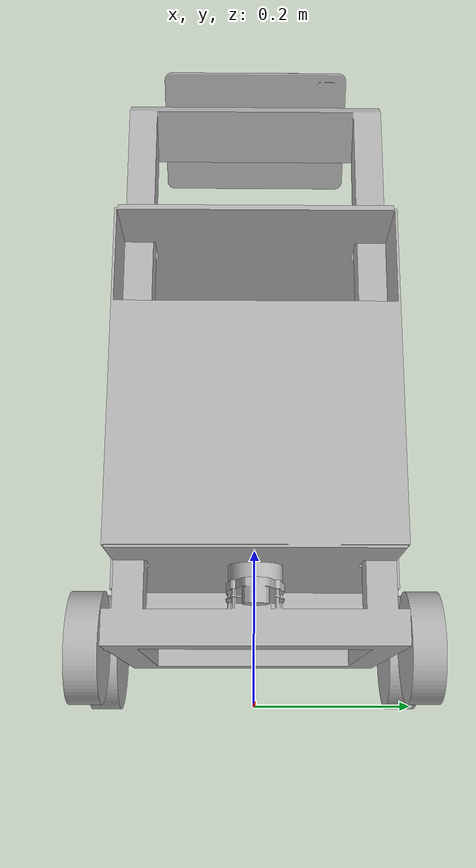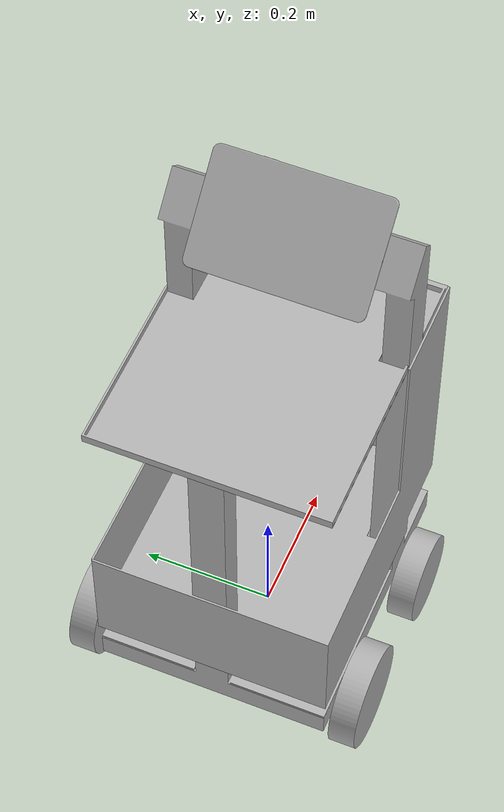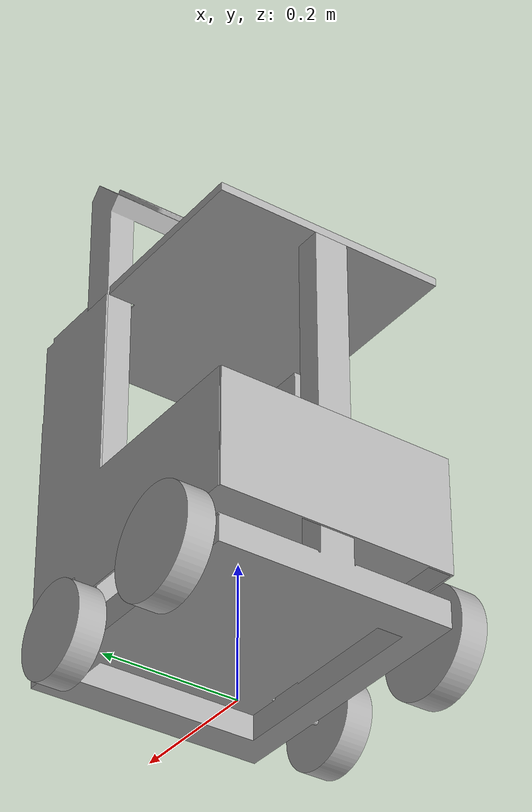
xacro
<?xml version="1.0" ?>
<robot name="guido" xmlns:xacro="http://www.ros.org/wiki/xacro">

<xacro:include filename="$(find guido_description)/urdf/materials.xacro" />
<xacro:include filename="$(find guido_description)/urdf/guido.trans" />
<xacro:include filename="$(find guido_description)/urdf/guido.gazebo" />

<link name="base_link">
  <inertial>
    <origin rpy="0 0 0" xyz="0.025787843252191255 0.00013395942900000117 0.25839072882336817"/>
    <mass value="2.1323844460998633"/>
    <inertia ixx="0.155357" ixy="1.4e-05" ixz="-0.007774" iyy="0.162862" iyz="5.4e-05" izz="0.064193"/>
  </inertial>
  <visual>
    <origin rpy="0 0 0" xyz="0 0 0"/>
    <geometry>
      <mesh filename="package://guido_description/meshes/base_link.stl" scale="0.001 0.001 0.001"/>
    </geometry>
    <material name="silver"/>
  </visual>
  <collision>
    <origin rpy="0 0 0" xyz="0 0 0"/>
    <geometry>
      <mesh filename="package://guido_description/meshes/base_link.stl" scale="0.001 0.001 0.001"/>
    </geometry>
  </collision>
</link>

<link name="fr_wheel_1">
  <inertial>
    <origin rpy="0 0 0" xyz="-1.249000902703301e-16 -0.01999999999999999 0.0"/>
    <mass value="0.2670294065290906"/>
    <inertia ixx="0.000451" ixy="0.0" ixz="-0.0" iyy="0.000775" iyz="0.0" izz="0.000451"/>
  </inertial>
  <visual>
    <origin rpy="0 0 0" xyz="-0.0855 0.185 -0.068"/>
    <geometry>
      <mesh filename="package://guido_description/meshes/fr_wheel_1.stl" scale="0.001 0.001 0.001"/>
    </geometry>
    <material name="silver"/>
  </visual>
  <collision>
    <origin rpy="0 0 0" xyz="-0.0855 0.185 -0.068"/>
    <geometry>
      <mesh filename="package://guido_description/meshes/fr_wheel_1.stl" scale="0.001 0.001 0.001"/>
    </geometry>
  </collision>
</link>

<link name="fl_wheel_1">
  <inertial>
    <origin rpy="0 0 0" xyz="-8.326672684688674e-17 0.01999999999999999 1.3877787807814457e-17"/>
    <mass value="0.2670294065290905"/>
    <inertia ixx="0.000451" ixy="0.0" ixz="-0.0" iyy="0.000775" iyz="0.0" izz="0.000451"/>
  </inertial>
  <visual>
    <origin rpy="0 0 0" xyz="-0.0855 -0.185 -0.068"/>
    <geometry>
      <mesh filename="package://guido_description/meshes/fl_wheel_1.stl" scale="0.001 0.001 0.001"/>
    </geometry>
    <material name="silver"/>
  </visual>
  <collision>
    <origin rpy="0 0 0" xyz="-0.0855 -0.185 -0.068"/>
    <geometry>
      <mesh filename="package://guido_description/meshes/fl_wheel_1.stl" scale="0.001 0.001 0.001"/>
    </geometry>
  </collision>
</link>

<link name="br_wheel_1">
  <inertial>
    <origin rpy="0 0 0" xyz="-5.551115123125783e-17 -0.019999999999999962 4.163336342344337e-17"/>
    <mass value="0.34631564093598505"/>
    <inertia ixx="0.000754" ixy="-0.0" ixz="0.0" iyy="0.001337" iyz="0.0" izz="0.000754"/>
  </inertial>
  <visual>
    <origin rpy="0 0 0" xyz="0.1417 0.185 -0.07905"/>
    <geometry>
      <mesh filename="package://guido_description/meshes/br_wheel_1.stl" scale="0.001 0.001 0.001"/>
    </geometry>
    <material name="silver"/>
  </visual>
  <collision>
    <origin rpy="0 0 0" xyz="0.1417 0.185 -0.07905"/>
    <geometry>
      <mesh filename="package://guido_description/meshes/br_wheel_1.stl" scale="0.001 0.001 0.001"/>
    </geometry>
  </collision>
</link>

<link name="bl_wheel_1">
  <inertial>
    <origin rpy="0 0 0" xyz="-5.551115123125783e-17 0.01999999999999999 4.163336342344337e-17"/>
    <mass value="0.34631564093598505"/>
    <inertia ixx="0.000754" ixy="0.0" ixz="0.0" iyy="0.001337" iyz="0.0" izz="0.000754"/>
  </inertial>
  <visual>
    <origin rpy="0 0 0" xyz="0.1417 -0.185 -0.07905"/>
    <geometry>
      <mesh filename="package://guido_description/meshes/bl_wheel_1.stl" scale="0.001 0.001 0.001"/>
    </geometry>
    <material name="silver"/>
  </visual>
  <collision>
    <origin rpy="0 0 0" xyz="0.1417 -0.185 -0.07905"/>
    <geometry>
      <mesh filename="package://guido_description/meshes/bl_wheel_1.stl" scale="0.001 0.001 0.001"/>
    </geometry>
  </collision>
</link>

<link name="lidar_1">
  <inertial>
    <origin rpy="0 0 0" xyz="0.0 9.176112072434116e-18 0.009999999999999926"/>
    <mass value="0.07165284205728649"/>
    <inertia ixx="2.2e-05" ixy="-0.0" ixz="0.0" iyy="2.2e-05" iyz="0.0" izz="3.9e-05"/>
  </inertial>
  <visual>
    <origin rpy="0 0 0" xyz="-0.14 -0.0 -0.14"/>
    <geometry>
      <mesh filename="package://guido_description/meshes/lidar_1.stl" scale="0.001 0.001 0.001"/>
    </geometry>
    <material name="silver"/>
  </visual>
  <collision>
    <origin rpy="0 0 0" xyz="-0.14 -0.0 -0.14"/>
    <geometry>
      <mesh filename="package://guido_description/meshes/lidar_1.stl" scale="0.001 0.001 0.001"/>
    </geometry>
  </collision>
</link>

<link name="tablet_1">
  <inertial>
    <origin rpy="0 0 0" xyz="-0.002130169571719548 0.00024403265276625954 0.0023142396475130944"/>
    <mass value="0.34028423181988465"/>
    <inertia ixx="0.002206" ixy="-3e-06" ixz="-0.000386" iyy="0.000774" iyz="-3e-06" izz="0.002206"/>
  </inertial>
  <visual>
    <origin rpy="0 0 0" xyz="-0.067539 -0.0 -0.790661"/>
    <geometry>
      <mesh filename="package://guido_description/meshes/tablet_1.stl" scale="0.001 0.001 0.001"/>
    </geometry>
    <material name="silver"/>
  </visual>
  <collision>
    <origin rpy="0 0 0" xyz="-0.067539 -0.0 -0.790661"/>
    <geometry>
      <mesh filename="package://guido_description/meshes/tablet_1.stl" scale="0.001 0.001 0.001"/>
    </geometry>
  </collision>
</link>

<link name="body_1">
  <inertial>
    <origin rpy="0 0 0" xyz="0.23877650565859726 3.824659041205314e-05 -0.254207973519019"/>
    <mass value="0.7487130914269344"/>
    <inertia ixx="0.034804" ixy="-1.4e-05" ixz="-0.002788" iyy="0.038762" iyz="-2e-06" izz="0.029848"/>
  </inertial>
  <visual>
    <origin rpy="0 0 0" xyz="0.2125 -0.0 -0.5981"/>
    <geometry>
      <mesh filename="package://guido_description/meshes/body_1.stl" scale="0.001 0.001 0.001"/>
    </geometry>
    <material name="silver"/>
  </visual>
  <collision>
    <origin rpy="0 0 0" xyz="0.2125 -0.0 -0.5981"/>
    <geometry>
      <mesh filename="package://guido_description/meshes/body_1.stl" scale="0.001 0.001 0.001"/>
    </geometry>
  </collision>
</link>

<joint name="fr_joint" type="continuous">
  <origin rpy="0 0 0" xyz="0.0855 -0.185 0.068"/>
  <parent link="base_link"/>
  <child link="fr_wheel_1"/>
  <axis xyz="0.0 1.0 0.0"/>
</joint>

<joint name="fl_joint" type="continuous">
  <origin rpy="0 0 0" xyz="0.0855 0.185 0.068"/>
  <parent link="base_link"/>
  <child link="fl_wheel_1"/>
  <axis xyz="0.0 1.0 0.0"/>
</joint>

<joint name="br_joint" type="continuous">
  <origin rpy="0 0 0" xyz="-0.1417 -0.185 0.07905"/>
  <parent link="base_link"/>
  <child link="br_wheel_1"/>
  <axis xyz="0.0 -1.0 0.0"/>
</joint>

<joint name="bl_joint" type="continuous">
  <origin rpy="0 0 0" xyz="-0.1417 0.185 0.07905"/>
  <parent link="base_link"/>
  <child link="bl_wheel_1"/>
  <axis xyz="0.0 -1.0 0.0"/>
</joint>

<joint name="lidar_joint" type="fixed">
  <origin rpy="0 0 0" xyz="0.14 0.0 0.14"/>
  <parent link="base_link"/>
  <child link="lidar_1"/>
</joint>

<joint name="tablet_joint" type="fixed">
  <origin rpy="0 0 0" xyz="0.067539 0.0 0.790661"/>
  <parent link="base_link"/>
  <child link="tablet_1"/>
</joint>

<joint name="body_joint" type="fixed">
  <origin rpy="0 0 0" xyz="-0.2125 0.0 0.5981"/>
  <parent link="base_link"/>
  <child link="body_1"/>
</joint>

</robot>

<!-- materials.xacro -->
<robot name="guido" xmlns:xacro="http://www.ros.org/wiki/xacro" >

<material name="silver">
  <color rgba="0.700 0.700 0.700 1.000"/>
</material>

  <material name="black">
    <color rgba="0.0 0.0 0.0 1.0"/>
  </material>

  <material name="blue">
    <color rgba="0.0 0.0 0.8 1.0"/>
  </material>

  <material name="green">
    <color rgba="0.0 0.8 0.0 1.0"/>
  </material>

  <material name="grey">
    <color rgba="0.2 0.2 0.2 1.0"/>
  </material>

  <material name="orange">
    <color rgba="${255/255} ${108/255} ${10/255} 1.0"/>
  </material>

  <material name="brown">
    <color rgba="${222/255} ${207/255} ${195/255} 1.0"/>
  </material>

  <material name="red">
    <color rgba="0.8 0.0 0.0 1.0"/>
  </material>

  <material name="white">
    <color rgba="1.0 1.0 1.0 1.0"/>
  </material>

</robot>

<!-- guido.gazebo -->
<robot name="guido" xmlns:xacro="http://www.ros.org/wiki/xacro" >

<xacro:property name="body_color" value="Gazebo/White" />
<xacro:property name="wheel_color" value="Gazebo/Black" />
<xacro:property name="chassis_color" value="Gazebo/Silver" />
<xacro:property name="lidar_color" value="Gazebo/Blue" />
<xacro:property name="tablet_color" value="Gazebo/Grey" />

<gazebo>
  <plugin filename="libgazebo_ros_control.so" name="gazebo_ros_control">
    <robotNamespace>/guido</robotNamespace>
    <robotSimType>gazebo_ros_control/DefaultRobotHWSim</robotSimType>
    <legacyModeNS>true</legacyModeNS>
  </plugin>
</gazebo>

<gazebo>
  <plugin name="differential_drive_controller" filename="libgazebo_ros_diff_drive.so">

    <!-- Plugin update rate in Hz -->
    <updateRate>20</updateRate>

    <!-- Name of left joint, defaults to `left_joint` -->
    <leftJoint>fl_joint</leftJoint>

    <!-- Name of right joint, defaults to `right_joint` -->
    <rightJoint>fr_joint</rightJoint>

    <!-- The distance from the center of one wheel to the other, in meters, defaults to 0.34 m -->
    <wheelSeparation>0.34</wheelSeparation>

    <!-- Diameter of the wheels, in meters, defaults to 0.15 m -->
    <wheelDiameter>0.1</wheelDiameter>

    <!-- Wheel acceleration, in rad/s^2, defaults to 0.0 rad/s^2 -->
    <wheelAcceleration>1.0</wheelAcceleration>

    <!-- Maximum torque which the wheels can produce, in Nm, defaults to 5 Nm -->
    <wheelTorque>20</wheelTorque>

    <!-- Topic to receive geometry_msgs/Twist message commands, defaults to `cmd_vel` -->
    <commandTopic>cmd_vel</commandTopic>

    <!-- Topic to publish nav_msgs/Odometry messages, defaults to `odom` -->
    <odometryTopic>odom</odometryTopic>

    <!-- Odometry frame, defaults to `odom` -->
    <odometryFrame>odom</odometryFrame>

    <!-- Robot frame to calculate odometry from, defaults to `base_footprint` -->
    <robotBaseFrame>base_link</robotBaseFrame>

    <!-- Odometry source, 0 for ENCODER, 1 for WORLD, defaults to WORLD -->
    <odometrySource>1</odometrySource>

    <!-- Set to true to publish transforms for the wheel links, defaults to false -->
    <publishWheelTF>false</publishWheelTF>

    <!-- Set to true to publish transforms for the odometry, defaults to true -->
    <publishOdom>true</publishOdom>

    <!-- Set to true to publish sensor_msgs/JointState on /joint_states for the wheel joints, defaults to false -->
    <publishWheelJointState>true</publishWheelJointState>

    <!-- Set to true to swap right and left wheels, defaults to true -->
    <legacyMode>false</legacyMode>
  </plugin>
</gazebo>

  <gazebo reference="lidar">
    <sensor type="ray" name="ydlidar">
      <pose>0 0 0 0 0 0</pose>
      <visualize>false</visualize>
      <update_rate>10</update_rate>
      <ray>
        <scan>
          <horizontal>
            <samples>720</samples>
            <resolution>1</resolution>
            <min_angle>-3.14159</min_angle>
            <max_angle>3.14159</max_angle>
          </horizontal>
        </scan>
        <range>
          <min>0.05</min>
          <max>20.0</max>
          <resolution>0.01</resolution>
        </range>
        <noise>
          <type>gaussian</type>
          <mean>0.0</mean>
          <stddev>0.01</stddev>
        </noise>
      </ray>
      <plugin name="gazebo_ros_head_hokuyo_controller" filename="libgazebo_ros_laser.so">
        <topicName>/scan</topicName>
        <frameName>lidar</frameName>
      </plugin>
    </sensor>
  </gazebo>

<gazebo reference="base_link">
  <material>${chassis_color}</material>
  <mu1>100</mu1>
  <mu2>100</mu2>
  <selfCollide>true</selfCollide>
  <gravity>true</gravity>
</gazebo>

<gazebo reference="fr_wheel_1">
  <material>${wheel_color}</material>
  <mu1>1000</mu1>
  <mu2>1000</mu2>
  <selfCollide>true</selfCollide>
</gazebo>

<gazebo reference="fl_wheel_1">
  <material>${wheel_color}</material>
  <mu1>1000</mu1>
  <mu2>1000</mu2>
  <selfCollide>true</selfCollide>
</gazebo>

<gazebo reference="br_wheel_1">
  <material>${wheel_color}</material>
  <mu1>0.1</mu1>
  <mu2>0.1</mu2>
  <selfCollide>true</selfCollide>
</gazebo>

<gazebo reference="bl_wheel_1">
  <material>${wheel_color}</material>
  <mu1>0.1</mu1>
  <mu2>0.1</mu2>
  <selfCollide>true</selfCollide>
</gazebo>

<gazebo reference="lidar_1">
  <material>${lidar_color}</material>
  <mu1>100</mu1>
  <mu2>100</mu2>
  <selfCollide>true</selfCollide>
</gazebo>

<gazebo reference="tablet_1">
  <material>${tablet_color}</material>
  <mu1>100</mu1>
  <mu2>100</mu2>
  <selfCollide>true</selfCollide>
</gazebo>

<gazebo reference="body_1">
  <material>${body_color}</material>
  <mu1>100</mu1>
  <mu2>100</mu2>
  <selfCollide>true</selfCollide>
</gazebo>

</robot>
